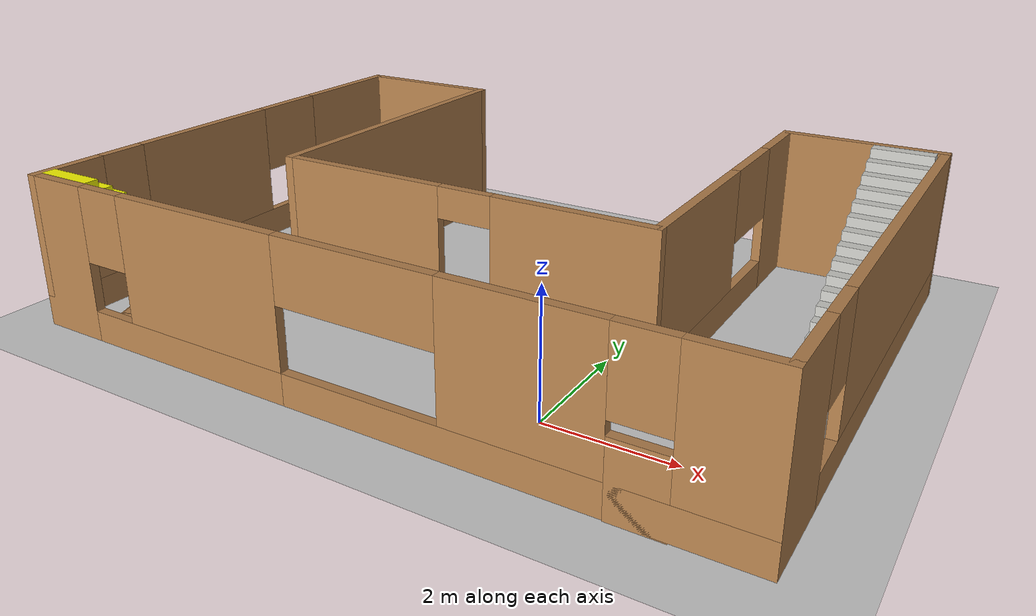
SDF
<sdf version="1.6">
 <world name="default">
  <model name="ground_plane">
   <static>1</static>
   <link name="link">
    <collision name="collision">
     <geometry><plane><normal>0 0 1</normal><size>100 100</size></plane></geometry>
     <surface><friction><ode><mu>100</mu><mu2>50</mu2></ode></friction></surface>
    </collision>
    <visual name="visual">
     <cast_shadows>0</cast_shadows>
     <geometry><plane><normal>0 0 1</normal><size>100 100</size></plane></geometry>
     <material>
      <script><uri>file://media/materials/scripts/gazebo.material</uri><name>Gazebo/Grey</name></script>
     </material>
    </visual>
   </link>
  </model>
  <model name="building0">
   <pose>-2.23967 2.7953 0 0 -0 0</pose>
   <link name="Stairs_0">
    <visual name="Stairs_0_Visual_0">
     <pose>5.18201 0.711332 0.083333 0 -0 -3.14159</pose>
     <geometry><box><size>1 0.233333 0.166667</size></box></geometry>
     <material>
      <script><uri>file://media/materials/scripts/gazebo.material</uri><name>Gazebo/CeilingTiled</name></script>
      <ambient>1 0 1 1</ambient>
     </material>
     <meta><layer>0</layer></meta>
    </visual>
    <collision name="Stairs_0_Collision_0">
     <geometry><box><size>1 0.233333 0.166667</size></box></geometry>
     <pose>5.18201 0.711332 0.083333 0 -0 -3.14159</pose>
    </collision>
    <visual name="Stairs_0_Visual_1">
     <pose>5.18201 0.944665 0.25 0 -0 -3.14159</pose>
     <geometry><box><size>1 0.233333 0.166667</size></box></geometry>
     <material>
      <script><uri>file://media/materials/scripts/gazebo.material</uri><name>Gazebo/CeilingTiled</name></script>
      <ambient>1 0 1 1</ambient>
     </material>
     <meta><layer>0</layer></meta>
    </visual>
    <collision name="Stairs_0_Collision_1">
     <geometry><box><size>1 0.233333 0.166667</size></box></geometry>
     <pose>5.18201 0.944665 0.25 0 -0 -3.14159</pose>
    </collision>
    <visual name="Stairs_0_Visual_2">
     <pose>5.18201 1.178 0.416667 0 -0 -3.14159</pose>
     <geometry><box><size>1 0.233333 0.166667</size></box></geometry>
     <material>
      <script><uri>file://media/materials/scripts/gazebo.material</uri><name>Gazebo/CeilingTiled</name></script>
      <ambient>1 0 1 1</ambient>
     </material>
     <meta><layer>0</layer></meta>
    </visual>
    <collision name="Stairs_0_Collision_2">
     <geometry><box><size>1 0.233333 0.166667</size></box></geometry>
     <pose>5.18201 1.178 0.416667 0 -0 -3.14159</pose>
    </collision>
    <visual name="Stairs_0_Visual_3">
     <pose>5.18201 1.41133 0.583333 0 -0 -3.14159</pose>
     <geometry><box><size>1 0.233333 0.166667</size></box></geometry>
     <material>
      <script><uri>file://media/materials/scripts/gazebo.material</uri><name>Gazebo/CeilingTiled</name></script>
      <ambient>1 0 1 1</ambient>
     </material>
     <meta><layer>0</layer></meta>
    </visual>
    <collision name="Stairs_0_Collision_3">
     <geometry><box><size>1 0.233333 0.166667</size></box></geometry>
     <pose>5.18201 1.41133 0.583333 0 -0 -3.14159</pose>
    </collision>
    <visual name="Stairs_0_Visual_4">
     <pose>5.18201 1.64467 0.75 0 -0 -3.14159</pose>
     <geometry><box><size>1 0.233333 0.166667</size></box></geometry>
     <material>
      <script><uri>file://media/materials/scripts/gazebo.material</uri><name>Gazebo/CeilingTiled</name></script>
      <ambient>1 0 1 1</ambient>
     </material>
     <meta><layer>0</layer></meta>
    </visual>
    <collision name="Stairs_0_Collision_4">
     <geometry><box><size>1 0.233333 0.166667</size></box></geometry>
     <pose>5.18201 1.64467 0.75 0 -0 -3.14159</pose>
    </collision>
    <visual name="Stairs_0_Visual_5">
     <pose>5.18201 1.878 0.916667 0 -0 -3.14159</pose>
     <geometry><box><size>1 0.233333 0.166667</size></box></geometry>
     <material>
      <script><uri>file://media/materials/scripts/gazebo.material</uri><name>Gazebo/CeilingTiled</name></script>
      <ambient>1 0 1 1</ambient>
     </material>
     <meta><layer>0</layer></meta>
    </visual>
    <collision name="Stairs_0_Collision_5">
     <geometry><box><size>1 0.233333 0.166667</size></box></geometry>
     <pose>5.18201 1.878 0.916667 0 -0 -3.14159</pose>
    </collision>
    <visual name="Stairs_0_Visual_6">
     <pose>5.18201 2.11133 1.08333 0 -0 -3.14159</pose>
     <geometry><box><size>1 0.233333 0.166667</size></box></geometry>
     <material>
      <script><uri>file://media/materials/scripts/gazebo.material</uri><name>Gazebo/CeilingTiled</name></script>
      <ambient>1 0 1 1</ambient>
     </material>
     <meta><layer>0</layer></meta>
    </visual>
    <collision name="Stairs_0_Collision_6">
     <geometry><box><size>1 0.233333 0.166667</size></box></geometry>
     <pose>5.18201 2.11133 1.08333 0 -0 -3.14159</pose>
    </collision>
    <visual name="Stairs_0_Visual_7">
     <pose>5.18201 2.34466 1.25 0 -0 -3.14159</pose>
     <geometry><box><size>1 0.233333 0.166667</size></box></geometry>
     <material>
      <script><uri>file://media/materials/scripts/gazebo.material</uri><name>Gazebo/CeilingTiled</name></script>
      <ambient>1 0 1 1</ambient>
     </material>
     <meta><layer>0</layer></meta>
    </visual>
    <collision name="Stairs_0_Collision_7">
     <geometry><box><size>1 0.233333 0.166667</size></box></geometry>
     <pose>5.18201 2.34466 1.25 0 -0 -3.14159</pose>
    </collision>
    <visual name="Stairs_0_Visual_8">
     <pose>5.18201 2.578 1.41667 0 -0 -3.14159</pose>
     <geometry><box><size>1 0.233333 0.166667</size></box></geometry>
     <material>
      <script><uri>file://media/materials/scripts/gazebo.material</uri><name>Gazebo/CeilingTiled</name></script>
      <ambient>1 0 1 1</ambient>
     </material>
     <meta><layer>0</layer></meta>
    </visual>
    <collision name="Stairs_0_Collision_8">
     <geometry><box><size>1 0.233333 0.166667</size></box></geometry>
     <pose>5.18201 2.578 1.41667 0 -0 -3.14159</pose>
    </collision>
    <visual name="Stairs_0_Visual_9">
     <pose>5.18201 2.81133 1.58333 0 -0 -3.14159</pose>
     <geometry><box><size>1 0.233333 0.166667</size></box></geometry>
     <material>
      <script><uri>file://media/materials/scripts/gazebo.material</uri><name>Gazebo/CeilingTiled</name></script>
      <ambient>1 0 1 1</ambient>
     </material>
     <meta><layer>0</layer></meta>
    </visual>
    <collision name="Stairs_0_Collision_9">
     <geometry><box><size>1 0.233333 0.166667</size></box></geometry>
     <pose>5.18201 2.81133 1.58333 0 -0 -3.14159</pose>
    </collision>
    <visual name="Stairs_0_Visual_10">
     <pose>5.18201 3.04467 1.75 0 -0 -3.14159</pose>
     <geometry><box><size>1 0.233333 0.166667</size></box></geometry>
     <material>
      <script><uri>file://media/materials/scripts/gazebo.material</uri><name>Gazebo/CeilingTiled</name></script>
      <ambient>1 0 1 1</ambient>
     </material>
     <meta><layer>0</layer></meta>
    </visual>
    <collision name="Stairs_0_Collision_10">
     <geometry><box><size>1 0.233333 0.166667</size></box></geometry>
     <pose>5.18201 3.04467 1.75 0 -0 -3.14159</pose>
    </collision>
    <visual name="Stairs_0_Visual_11">
     <pose>5.18201 3.278 1.91667 0 -0 -3.14159</pose>
     <geometry><box><size>1 0.233333 0.166667</size></box></geometry>
     <material>
      <script><uri>file://media/materials/scripts/gazebo.material</uri><name>Gazebo/CeilingTiled</name></script>
      <ambient>1 0 1 1</ambient>
     </material>
     <meta><layer>0</layer></meta>
    </visual>
    <collision name="Stairs_0_Collision_11">
     <geometry><box><size>1 0.233333 0.166667</size></box></geometry>
     <pose>5.18201 3.278 1.91667 0 -0 -3.14159</pose>
    </collision>
    <visual name="Stairs_0_Visual_12">
     <pose>5.18201 3.51133 2.08333 0 -0 -3.14159</pose>
     <geometry><box><size>1 0.233333 0.166667</size></box></geometry>
     <material>
      <script><uri>file://media/materials/scripts/gazebo.material</uri><name>Gazebo/CeilingTiled</name></script>
      <ambient>1 0 1 1</ambient>
     </material>
     <meta><layer>0</layer></meta>
    </visual>
    <collision name="Stairs_0_Collision_12">
     <geometry><box><size>1 0.233333 0.166667</size></box></geometry>
     <pose>5.18201 3.51133 2.08333 0 -0 -3.14159</pose>
    </collision>
    <visual name="Stairs_0_Visual_13">
     <pose>5.18201 3.74466 2.25 0 -0 -3.14159</pose>
     <geometry><box><size>1 0.233333 0.166667</size></box></geometry>
     <material>
      <script><uri>file://media/materials/scripts/gazebo.material</uri><name>Gazebo/CeilingTiled</name></script>
      <ambient>1 0 1 1</ambient>
     </material>
     <meta><layer>0</layer></meta>
    </visual>
    <collision name="Stairs_0_Collision_13">
     <geometry><box><size>1 0.233333 0.166667</size></box></geometry>
     <pose>5.18201 3.74466 2.25 0 -0 -3.14159</pose>
    </collision>
    <visual name="Stairs_0_Visual_14">
     <pose>5.18201 3.978 2.41667 0 -0 -3.14159</pose>
     <geometry><box><size>1 0.233333 0.166667</size></box></geometry>
     <material>
      <script><uri>file://media/materials/scripts/gazebo.material</uri><name>Gazebo/CeilingTiled</name></script>
      <ambient>1 0 1 1</ambient>
     </material>
     <meta><layer>0</layer></meta>
    </visual>
    <collision name="Stairs_0_Collision_14">
     <geometry><box><size>1 0.233333 0.166667</size></box></geometry>
     <pose>5.18201 3.978 2.41667 0 -0 -3.14159</pose>
    </collision>
   </link>
   <link name="Stairs_1">
    <visual name="Stairs_1_Visual_0">
     <pose>-5.25693 -0.708464 0.083333 0 -0 0</pose>
     <geometry><box><size>1 0.233333 0.166667</size></box></geometry>
     <material>
      <script><uri>file://media/materials/scripts/gazebo.material</uri><name>Gazebo/Grey</name></script>
      <ambient>1 1 0 1</ambient>
     </material>
     <meta><layer>0</layer></meta>
    </visual>
    <collision name="Stairs_1_Collision_0">
     <geometry><box><size>1 0.233333 0.166667</size></box></geometry>
     <pose>-5.25693 -0.708464 0.083333 0 -0 0</pose>
    </collision>
    <visual name="Stairs_1_Visual_1">
     <pose>-5.25693 -0.941797 0.25 0 -0 0</pose>
     <geometry><box><size>1 0.233333 0.166667</size></box></geometry>
     <material>
      <script><uri>file://media/materials/scripts/gazebo.material</uri><name>Gazebo/Grey</name></script>
      <ambient>1 1 0 1</ambient>
     </material>
     <meta><layer>0</layer></meta>
    </visual>
    <collision name="Stairs_1_Collision_1">
     <geometry><box><size>1 0.233333 0.166667</size></box></geometry>
     <pose>-5.25693 -0.941797 0.25 0 -0 0</pose>
    </collision>
    <visual name="Stairs_1_Visual_2">
     <pose>-5.25693 -1.17513 0.416667 0 -0 0</pose>
     <geometry><box><size>1 0.233333 0.166667</size></box></geometry>
     <material>
      <script><uri>file://media/materials/scripts/gazebo.material</uri><name>Gazebo/Grey</name></script>
      <ambient>1 1 0 1</ambient>
     </material>
     <meta><layer>0</layer></meta>
    </visual>
    <collision name="Stairs_1_Collision_2">
     <geometry><box><size>1 0.233333 0.166667</size></box></geometry>
     <pose>-5.25693 -1.17513 0.416667 0 -0 0</pose>
    </collision>
    <visual name="Stairs_1_Visual_3">
     <pose>-5.25693 -1.40846 0.583333 0 -0 0</pose>
     <geometry><box><size>1 0.233333 0.166667</size></box></geometry>
     <material>
      <script><uri>file://media/materials/scripts/gazebo.material</uri><name>Gazebo/Grey</name></script>
      <ambient>1 1 0 1</ambient>
     </material>
     <meta><layer>0</layer></meta>
    </visual>
    <collision name="Stairs_1_Collision_3">
     <geometry><box><size>1 0.233333 0.166667</size></box></geometry>
     <pose>-5.25693 -1.40846 0.583333 0 -0 0</pose>
    </collision>
    <visual name="Stairs_1_Visual_4">
     <pose>-5.25693 -1.6418 0.75 0 -0 0</pose>
     <geometry><box><size>1 0.233333 0.166667</size></box></geometry>
     <material>
      <script><uri>file://media/materials/scripts/gazebo.material</uri><name>Gazebo/Grey</name></script>
      <ambient>1 1 0 1</ambient>
     </material>
     <meta><layer>0</layer></meta>
    </visual>
    <collision name="Stairs_1_Collision_4">
     <geometry><box><size>1 0.233333 0.166667</size></box></geometry>
     <pose>-5.25693 -1.6418 0.75 0 -0 0</pose>
    </collision>
    <visual name="Stairs_1_Visual_5">
     <pose>-5.25693 -1.87513 0.916667 0 -0 0</pose>
     <geometry><box><size>1 0.233333 0.166667</size></box></geometry>
     <material>
      <script><uri>file://media/materials/scripts/gazebo.material</uri><name>Gazebo/Grey</name></script>
      <ambient>1 1 0 1</ambient>
     </material>
     <meta><layer>0</layer></meta>
    </visual>
    <collision name="Stairs_1_Collision_5">
     <geometry><box><size>1 0.233333 0.166667</size></box></geometry>
     <pose>-5.25693 -1.87513 0.916667 0 -0 0</pose>
    </collision>
    <visual name="Stairs_1_Visual_6">
     <pose>-5.25693 -2.10846 1.08333 0 -0 0</pose>
     <geometry><box><size>1 0.233333 0.166667</size></box></geometry>
     <material>
      <script><uri>file://media/materials/scripts/gazebo.material</uri><name>Gazebo/Grey</name></script>
      <ambient>1 1 0 1</ambient>
     </material>
     <meta><layer>0</layer></meta>
    </visual>
    <collision name="Stairs_1_Collision_6">
     <geometry><box><size>1 0.233333 0.166667</size></box></geometry>
     <pose>-5.25693 -2.10846 1.08333 0 -0 0</pose>
    </collision>
    <visual name="Stairs_1_Visual_7">
     <pose>-5.25693 -2.3418 1.25 0 -0 0</pose>
     <geometry><box><size>1 0.233333 0.166667</size></box></geometry>
     <material>
      <script><uri>file://media/materials/scripts/gazebo.material</uri><name>Gazebo/Grey</name></script>
      <ambient>1 1 0 1</ambient>
     </material>
     <meta><layer>0</layer></meta>
    </visual>
    <collision name="Stairs_1_Collision_7">
     <geometry><box><size>1 0.233333 0.166667</size></box></geometry>
     <pose>-5.25693 -2.3418 1.25 0 -0 0</pose>
    </collision>
    <visual name="Stairs_1_Visual_8">
     <pose>-5.25693 -2.57513 1.41667 0 -0 0</pose>
     <geometry><box><size>1 0.233333 0.166667</size></box></geometry>
     <material>
      <script><uri>file://media/materials/scripts/gazebo.material</uri><name>Gazebo/Grey</name></script>
      <ambient>1 1 0 1</ambient>
     </material>
     <meta><layer>0</layer></meta>
    </visual>
    <collision name="Stairs_1_Collision_8">
     <geometry><box><size>1 0.233333 0.166667</size></box></geometry>
     <pose>-5.25693 -2.57513 1.41667 0 -0 0</pose>
    </collision>
    <visual name="Stairs_1_Visual_9">
     <pose>-5.25693 -2.80846 1.58333 0 -0 0</pose>
     <geometry><box><size>1 0.233333 0.166667</size></box></geometry>
     <material>
      <script><uri>file://media/materials/scripts/gazebo.material</uri><name>Gazebo/Grey</name></script>
      <ambient>1 1 0 1</ambient>
     </material>
     <meta><layer>0</layer></meta>
    </visual>
    <collision name="Stairs_1_Collision_9">
     <geometry><box><size>1 0.233333 0.166667</size></box></geometry>
     <pose>-5.25693 -2.80846 1.58333 0 -0 0</pose>
    </collision>
    <visual name="Stairs_1_Visual_10">
     <pose>-5.25693 -3.0418 1.75 0 -0 0</pose>
     <geometry><box><size>1 0.233333 0.166667</size></box></geometry>
     <material>
      <script><uri>file://media/materials/scripts/gazebo.material</uri><name>Gazebo/Grey</name></script>
      <ambient>1 1 0 1</ambient>
     </material>
     <meta><layer>0</layer></meta>
    </visual>
    <collision name="Stairs_1_Collision_10">
     <geometry><box><size>1 0.233333 0.166667</size></box></geometry>
     <pose>-5.25693 -3.0418 1.75 0 -0 0</pose>
    </collision>
    <visual name="Stairs_1_Visual_11">
     <pose>-5.25693 -3.27513 1.91667 0 -0 0</pose>
     <geometry><box><size>1 0.233333 0.166667</size></box></geometry>
     <material>
      <script><uri>file://media/materials/scripts/gazebo.material</uri><name>Gazebo/Grey</name></script>
      <ambient>1 1 0 1</ambient>
     </material>
     <meta><layer>0</layer></meta>
    </visual>
    <collision name="Stairs_1_Collision_11">
     <geometry><box><size>1 0.233333 0.166667</size></box></geometry>
     <pose>-5.25693 -3.27513 1.91667 0 -0 0</pose>
    </collision>
    <visual name="Stairs_1_Visual_12">
     <pose>-5.25693 -3.50846 2.08333 0 -0 0</pose>
     <geometry><box><size>1 0.233333 0.166667</size></box></geometry>
     <material>
      <script><uri>file://media/materials/scripts/gazebo.material</uri><name>Gazebo/Grey</name></script>
      <ambient>1 1 0 1</ambient>
     </material>
     <meta><layer>0</layer></meta>
    </visual>
    <collision name="Stairs_1_Collision_12">
     <geometry><box><size>1 0.233333 0.166667</size></box></geometry>
     <pose>-5.25693 -3.50846 2.08333 0 -0 0</pose>
    </collision>
    <visual name="Stairs_1_Visual_13">
     <pose>-5.25693 -3.7418 2.25 0 -0 0</pose>
     <geometry><box><size>1 0.233333 0.166667</size></box></geometry>
     <material>
      <script><uri>file://media/materials/scripts/gazebo.material</uri><name>Gazebo/Grey</name></script>
      <ambient>1 1 0 1</ambient>
     </material>
     <meta><layer>0</layer></meta>
    </visual>
    <collision name="Stairs_1_Collision_13">
     <geometry><box><size>1 0.233333 0.166667</size></box></geometry>
     <pose>-5.25693 -3.7418 2.25 0 -0 0</pose>
    </collision>
    <visual name="Stairs_1_Visual_14">
     <pose>-5.25693 -3.97513 2.41667 0 -0 0</pose>
     <geometry><box><size>1 0.233333 0.166667</size></box></geometry>
     <material>
      <script><uri>file://media/materials/scripts/gazebo.material</uri><name>Gazebo/Grey</name></script>
      <ambient>1 1 0 1</ambient>
     </material>
     <meta><layer>0</layer></meta>
    </visual>
    <collision name="Stairs_1_Collision_14">
     <geometry><box><size>1 0.233333 0.166667</size></box></geometry>
     <pose>-5.25693 -3.97513 2.41667 0 -0 0</pose>
    </collision>
   </link>
   <link name="Wall_29">
    <pose>-5.8 0 0 0 0 -1.5708</pose>
    <visual name="Wall_29_Visual_0">
     <pose>-3.11517 0 1.25 0 -0 0</pose>
     <geometry><box><size>2.26965 0.15 2.5</size></box></geometry>
     <material>
      <script><uri>file://media/materials/scripts/gazebo.material</uri><name>Gazebo/Wood</name></script>
      <ambient>1 0.764706 0.305882 1</ambient>
     </material>
     <meta><layer>0</layer></meta>
    </visual>
    <collision name="Wall_29_Collision_0">
     <geometry><box><size>2.26965 0.15 2.5</size></box></geometry>
     <pose>-3.11517 0 1.25 0 -0 0</pose>
    </collision>
    <visual name="Wall_29_Visual_1">
     <pose>1.13482 0 0.25 0 -0 0</pose>
     <geometry><box><size>6.23035 0.15 0.5</size></box></geometry>
     <material>
      <script><uri>file://media/materials/scripts/gazebo.material</uri><name>Gazebo/Wood</name></script>
      <ambient>1 0.764706 0.305882 1</ambient>
     </material>
     <meta><layer>0</layer></meta>
    </visual>
    <collision name="Wall_29_Collision_1">
     <geometry><box><size>6.23035 0.15 0.5</size></box></geometry>
     <pose>1.13482 0 0.25 0 -0 0</pose>
    </collision>
    <visual name="Wall_29_Visual_2">
     <pose>0.782995 0 1.5 0 -0 0</pose>
     <geometry><box><size>2.84056 0.15 2</size></box></geometry>
     <material>
      <script><uri>file://media/materials/scripts/gazebo.material</uri><name>Gazebo/Wood</name></script>
      <ambient>1 0.764706 0.305882 1</ambient>
     </material>
     <meta><layer>0</layer></meta>
    </visual>
    <collision name="Wall_29_Collision_2">
     <geometry><box><size>2.84056 0.15 2</size></box></geometry>
     <pose>0.782995 0 1.5 0 -0 0</pose>
    </collision>
    <visual name="Wall_29_Visual_3">
     <pose>3.62664 0 1.5 0 -0 0</pose>
     <geometry><box><size>1.24673 0.15 2</size></box></geometry>
     <material>
      <script><uri>file://media/materials/scripts/gazebo.material</uri><name>Gazebo/Wood</name></script>
      <ambient>1 0.764706 0.305882 1</ambient>
     </material>
     <meta><layer>0</layer></meta>
    </visual>
    <collision name="Wall_29_Collision_3">
     <geometry><box><size>1.24673 0.15 2</size></box></geometry>
     <pose>3.62664 0 1.5 0 -0 0</pose>
    </collision>
    <visual name="Wall_29_Visual_4">
     <pose>-1.30882 0 1.9 0 -0 0</pose>
     <geometry><box><size>1.34307 0.15 1.2</size></box></geometry>
     <material>
      <script><uri>file://media/materials/scripts/gazebo.material</uri><name>Gazebo/Wood</name></script>
      <ambient>1 0.764706 0.305882 1</ambient>
     </material>
     <meta><layer>0</layer></meta>
    </visual>
    <collision name="Wall_29_Collision_4">
     <geometry><box><size>1.34307 0.15 1.2</size></box></geometry>
     <pose>-1.30882 0 1.9 0 -0 0</pose>
    </collision>
    <visual name="Wall_29_Visual_5">
     <pose>2.60327 0 1.9 0 -0 0</pose>
     <geometry><box><size>0.8 0.15 1.2</size></box></geometry>
     <material>
      <script><uri>file://media/materials/scripts/gazebo.material</uri><name>Gazebo/Wood</name></script>
      <ambient>1 0.764706 0.305882 1</ambient>
     </material>
     <meta><layer>0</layer></meta>
    </visual>
    <collision name="Wall_29_Collision_5">
     <geometry><box><size>0.8 0.15 1.2</size></box></geometry>
     <pose>2.60327 0 1.9 0 -0 0</pose>
    </collision>
   </link>
   <link name="Wall_30">
    <pose>0 -4.175 0 0 -0 0</pose>
    <visual name="Wall_30_Visual_0">
     <pose>-5.2933 0 1.25 0 -0 0</pose>
     <geometry><box><size>1.1634 0.15 2.5</size></box></geometry>
     <material>
      <script><uri>file://media/materials/scripts/gazebo.material</uri><name>Gazebo/Wood</name></script>
      <ambient>1 0.764706 0.305882 1</ambient>
     </material>
     <meta><layer>0</layer></meta>
    </visual>
    <collision name="Wall_30_Collision_0">
     <geometry><box><size>1.1634 0.15 2.5</size></box></geometry>
     <pose>-5.2933 0 1.25 0 -0 0</pose>
    </collision>
    <visual name="Wall_30_Visual_1">
     <pose>-2.83101 0 0.25 0 -0 0</pose>
     <geometry><box><size>3.76118 0.15 0.5</size></box></geometry>
     <material>
      <script><uri>file://media/materials/scripts/gazebo.material</uri><name>Gazebo/Wood</name></script>
      <ambient>1 0.764706 0.305882 1</ambient>
     </material>
     <meta><layer>0</layer></meta>
    </visual>
    <collision name="Wall_30_Collision_1">
     <geometry><box><size>3.76118 0.15 0.5</size></box></geometry>
     <pose>-2.83101 0 0.25 0 -0 0</pose>
    </collision>
    <visual name="Wall_30_Visual_2">
     <pose>2.46229 0 0.25 0 -0 0</pose>
     <geometry><box><size>6.82542 0.15 0.5</size></box></geometry>
     <material>
      <script><uri>file://media/materials/scripts/gazebo.material</uri><name>Gazebo/Wood</name></script>
      <ambient>1 0.764706 0.305882 1</ambient>
     </material>
     <meta><layer>0</layer></meta>
    </visual>
    <collision name="Wall_30_Collision_2">
     <geometry><box><size>6.82542 0.15 0.5</size></box></geometry>
     <pose>2.46229 0 0.25 0 -0 0</pose>
    </collision>
    <visual name="Wall_30_Visual_3">
     <pose>2.72818 0 1.5 0 -0 0</pose>
     <geometry><box><size>2.2572 0.15 2</size></box></geometry>
     <material>
      <script><uri>file://media/materials/scripts/gazebo.material</uri><name>Gazebo/Wood</name></script>
      <ambient>1 0.764706 0.305882 1</ambient>
     </material>
     <meta><layer>0</layer></meta>
    </visual>
    <collision name="Wall_30_Collision_3">
     <geometry><box><size>2.2572 0.15 2</size></box></geometry>
     <pose>2.72818 0 1.5 0 -0 0</pose>
    </collision>
    <visual name="Wall_30_Visual_4">
     <pose>5.26589 0 1.5 0 -0 0</pose>
     <geometry><box><size>1.21821 0.15 2</size></box></geometry>
     <material>
      <script><uri>file://media/materials/scripts/gazebo.material</uri><name>Gazebo/Wood</name></script>
      <ambient>1 0.764706 0.305882 1</ambient>
     </material>
     <meta><layer>0</layer></meta>
    </visual>
    <collision name="Wall_30_Collision_4">
     <geometry><box><size>1.21821 0.15 2</size></box></geometry>
     <pose>5.26589 0 1.5 0 -0 0</pose>
    </collision>
    <visual name="Wall_30_Visual_5">
     <pose>4.25679 0 0.5 0 -0 0</pose>
     <geometry><box><size>0.8 0.15 1.2</size></box></geometry>
     <material>
      <script><uri>file://media/materials/scripts/gazebo.material</uri><name>Gazebo/Wood</name></script>
      <ambient>1 0.764706 0.305882 1</ambient>
     </material>
     <meta><layer>0</layer></meta>
    </visual>
    <collision name="Wall_30_Collision_5">
     <geometry><box><size>0.8 0.15 1.2</size></box></geometry>
     <pose>4.25679 0 0.5 0 -0 0</pose>
    </collision>
    <visual name="Wall_30_Visual_6">
     <pose>-2.43101 0 1.5 0 -0 0</pose>
     <geometry><box><size>2.96118 0.15 2</size></box></geometry>
     <material>
      <script><uri>file://media/materials/scripts/gazebo.material</uri><name>Gazebo/Wood</name></script>
      <ambient>1 0.764706 0.305882 1</ambient>
     </material>
     <meta><layer>0</layer></meta>
    </visual>
    <collision name="Wall_30_Collision_6">
     <geometry><box><size>2.96118 0.15 2</size></box></geometry>
     <pose>-2.43101 0 1.5 0 -0 0</pose>
    </collision>
    <visual name="Wall_30_Visual_7">
     <pose>-2.43101 0 1.5 0 -0 0</pose>
     <geometry><box><size>2.96118 0.15 2</size></box></geometry>
     <material>
      <script><uri>file://media/materials/scripts/gazebo.material</uri><name>Gazebo/Wood</name></script>
      <ambient>1 0.764706 0.305882 1</ambient>
     </material>
     <meta><layer>0</layer></meta>
    </visual>
    <collision name="Wall_30_Collision_7">
     <geometry><box><size>2.96118 0.15 2</size></box></geometry>
     <pose>-2.43101 0 1.5 0 -0 0</pose>
    </collision>
    <visual name="Wall_30_Visual_8">
     <pose>-4.3116 0 1.9 0 -0 0</pose>
     <geometry><box><size>0.8 0.15 1.2</size></box></geometry>
     <material>
      <script><uri>file://media/materials/scripts/gazebo.material</uri><name>Gazebo/Wood</name></script>
      <ambient>1 0.764706 0.305882 1</ambient>
     </material>
     <meta><layer>0</layer></meta>
    </visual>
    <collision name="Wall_30_Collision_8">
     <geometry><box><size>0.8 0.15 1.2</size></box></geometry>
     <pose>-4.3116 0 1.9 0 -0 0</pose>
    </collision>
    <visual name="Wall_30_Visual_9">
     <pose>4.25679 0 1.9 0 -0 0</pose>
     <geometry><box><size>0.8 0.15 1.2</size></box></geometry>
     <material>
      <script><uri>file://media/materials/scripts/gazebo.material</uri><name>Gazebo/Wood</name></script>
      <ambient>1 0.764706 0.305882 1</ambient>
     </material>
     <meta><layer>0</layer></meta>
    </visual>
    <collision name="Wall_30_Collision_9">
     <geometry><box><size>0.8 0.15 1.2</size></box></geometry>
     <pose>4.25679 0 1.9 0 -0 0</pose>
    </collision>
    <visual name="Wall_30_Visual_10">
     <pose>0.324583 0 2 0 -0 0</pose>
     <geometry><box><size>2.55 0.15 1</size></box></geometry>
     <material>
      <script><uri>file://media/materials/scripts/gazebo.material</uri><name>Gazebo/Wood</name></script>
      <ambient>1 0.764706 0.305882 1</ambient>
     </material>
     <meta><layer>0</layer></meta>
    </visual>
    <collision name="Wall_30_Collision_10">
     <geometry><box><size>2.55 0.15 1</size></box></geometry>
     <pose>0.324583 0 2 0 -0 0</pose>
    </collision>
    <visual name="Wall_30_Visual_11">
     <pose>0.324583 0 2 0 -0 0</pose>
     <geometry><box><size>2.55 0.15 1</size></box></geometry>
     <material>
      <script><uri>file://media/materials/scripts/gazebo.material</uri><name>Gazebo/Wood</name></script>
      <ambient>1 0.764706 0.305882 1</ambient>
     </material>
     <meta><layer>0</layer></meta>
    </visual>
    <collision name="Wall_30_Collision_11">
     <geometry><box><size>2.55 0.15 1</size></box></geometry>
     <pose>0.324583 0 2 0 -0 0</pose>
    </collision>
   </link>
   <link name="Wall_31">
    <pose>5.8 0 0 0 -0 1.5708</pose>
    <visual name="Wall_31_Visual_0">
     <pose>-3.54618 0 1.25 0 -0 0</pose>
     <geometry><box><size>1.40763 0.15 2.5</size></box></geometry>
     <material>
      <script><uri>file://media/materials/scripts/gazebo.material</uri><name>Gazebo/Wood</name></script>
      <ambient>1 0.764706 0.305882 1</ambient>
     </material>
     <meta><layer>0</layer></meta>
    </visual>
    <collision name="Wall_31_Collision_0">
     <geometry><box><size>1.40763 0.15 2.5</size></box></geometry>
     <pose>-3.54618 0 1.25 0 -0 0</pose>
    </collision>
    <visual name="Wall_31_Visual_1">
     <pose>0.703818 0 0.25 0 -0 0</pose>
     <geometry><box><size>7.09237 0.15 0.5</size></box></geometry>
     <material>
      <script><uri>file://media/materials/scripts/gazebo.material</uri><name>Gazebo/Wood</name></script>
      <ambient>1 0.764706 0.305882 1</ambient>
     </material>
     <meta><layer>0</layer></meta>
    </visual>
    <collision name="Wall_31_Collision_1">
     <geometry><box><size>7.09237 0.15 0.5</size></box></geometry>
     <pose>0.703818 0 0.25 0 -0 0</pose>
    </collision>
    <visual name="Wall_31_Visual_2">
     <pose>1.10382 0 1.5 0 -0 0</pose>
     <geometry><box><size>6.29237 0.15 2</size></box></geometry>
     <material>
      <script><uri>file://media/materials/scripts/gazebo.material</uri><name>Gazebo/Wood</name></script>
      <ambient>1 0.764706 0.305882 1</ambient>
     </material>
     <meta><layer>0</layer></meta>
    </visual>
    <collision name="Wall_31_Collision_2">
     <geometry><box><size>6.29237 0.15 2</size></box></geometry>
     <pose>1.10382 0 1.5 0 -0 0</pose>
    </collision>
    <visual name="Wall_31_Visual_3">
     <pose>-2.44237 0 1.9 0 -0 0</pose>
     <geometry><box><size>0.8 0.15 1.2</size></box></geometry>
     <material>
      <script><uri>file://media/materials/scripts/gazebo.material</uri><name>Gazebo/Wood</name></script>
      <ambient>1 0.764706 0.305882 1</ambient>
     </material>
     <meta><layer>0</layer></meta>
    </visual>
    <collision name="Wall_31_Collision_3">
     <geometry><box><size>0.8 0.15 1.2</size></box></geometry>
     <pose>-2.44237 0 1.9 0 -0 0</pose>
    </collision>
   </link>
   <link name="Wall_32">
    <collision name="Wall_32_Collision">
     <geometry><box><size>2.75 0.15 2.5</size></box></geometry>
     <pose>0 0 1.25 0 -0 0</pose>
    </collision>
    <visual name="Wall_32_Visual">
     <pose>0 0 1.25 0 -0 0</pose>
     <geometry><box><size>2.75 0.15 2.5</size></box></geometry>
     <material>
      <script><uri>file://media/materials/scripts/gazebo.material</uri><name>Gazebo/Wood</name></script>
      <ambient>1 0.764706 0.305882 1</ambient>
     </material>
     <meta><layer>0</layer></meta>
    </visual>
    <pose>4.5 4.175 0 0 -0 3.14159</pose>
   </link>
   <link name="Wall_33">
    <pose>3.2 1.375 0 0 0 -1.5708</pose>
    <visual name="Wall_33_Visual_0">
     <pose>-2.23296 0 1.25 0 -0 0</pose>
     <geometry><box><size>1.28409 0.15 2.5</size></box></geometry>
     <material>
      <script><uri>file://media/materials/scripts/gazebo.material</uri><name>Gazebo/Wood</name></script>
      <ambient>1 0.764706 0.305882 1</ambient>
     </material>
     <meta><layer>0</layer></meta>
    </visual>
    <collision name="Wall_33_Collision_0">
     <geometry><box><size>1.28409 0.15 2.5</size></box></geometry>
     <pose>-2.23296 0 1.25 0 -0 0</pose>
    </collision>
    <visual name="Wall_33_Visual_1">
     <pose>0.642043 0 0.25 0 -0 0</pose>
     <geometry><box><size>4.46591 0.15 0.5</size></box></geometry>
     <material>
      <script><uri>file://media/materials/scripts/gazebo.material</uri><name>Gazebo/Wood</name></script>
      <ambient>1 0.764706 0.305882 1</ambient>
     </material>
     <meta><layer>0</layer></meta>
    </visual>
    <collision name="Wall_33_Collision_1">
     <geometry><box><size>4.46591 0.15 0.5</size></box></geometry>
     <pose>0.642043 0 0.25 0 -0 0</pose>
    </collision>
    <visual name="Wall_33_Visual_2">
     <pose>1.36386 0 1.5 0 -0 0</pose>
     <geometry><box><size>3.02228 0.15 2</size></box></geometry>
     <material>
      <script><uri>file://media/materials/scripts/gazebo.material</uri><name>Gazebo/Wood</name></script>
      <ambient>1 0.764706 0.305882 1</ambient>
     </material>
     <meta><layer>0</layer></meta>
    </visual>
    <collision name="Wall_33_Collision_2">
     <geometry><box><size>3.02228 0.15 2</size></box></geometry>
     <pose>1.36386 0 1.5 0 -0 0</pose>
    </collision>
    <visual name="Wall_33_Visual_3">
     <pose>-0.869097 0 1.9 0 -0 0</pose>
     <geometry><box><size>1.44363 0.15 1.2</size></box></geometry>
     <material>
      <script><uri>file://media/materials/scripts/gazebo.material</uri><name>Gazebo/Wood</name></script>
      <ambient>1 0.764706 0.305882 1</ambient>
     </material>
     <meta><layer>0</layer></meta>
    </visual>
    <collision name="Wall_33_Collision_3">
     <geometry><box><size>1.44363 0.15 1.2</size></box></geometry>
     <pose>-0.869097 0 1.9 0 -0 0</pose>
    </collision>
   </link>
   <link name="Wall_34">
    <pose>0.025 -1.425 0 0 -0 3.14159</pose>
    <visual name="Wall_34_Visual_0">
     <pose>-1.93442 0 1.25 0 -0 0</pose>
     <geometry><box><size>2.63116 0.15 2.5</size></box></geometry>
     <material>
      <script><uri>file://media/materials/scripts/gazebo.material</uri><name>Gazebo/Wood</name></script>
      <ambient>1 0.764706 0.305882 1</ambient>
     </material>
     <meta><layer>0</layer></meta>
    </visual>
    <collision name="Wall_34_Collision_0">
     <geometry><box><size>2.63116 0.15 2.5</size></box></geometry>
     <pose>-1.93442 0 1.25 0 -0 0</pose>
    </collision>
    <visual name="Wall_34_Visual_1">
     <pose>1.76558 0 1.25 0 -0 0</pose>
     <geometry><box><size>2.96884 0.15 2.5</size></box></geometry>
     <material>
      <script><uri>file://media/materials/scripts/gazebo.material</uri><name>Gazebo/Wood</name></script>
      <ambient>1 0.764706 0.305882 1</ambient>
     </material>
     <meta><layer>0</layer></meta>
    </visual>
    <collision name="Wall_34_Collision_1">
     <geometry><box><size>2.96884 0.15 2.5</size></box></geometry>
     <pose>1.76558 0 1.25 0 -0 0</pose>
    </collision>
    <visual name="Wall_34_Visual_2">
     <pose>-0.168844 0 2.25 0 -0 0</pose>
     <geometry><box><size>0.9 0.15 0.5</size></box></geometry>
     <material>
      <script><uri>file://media/materials/scripts/gazebo.material</uri><name>Gazebo/Wood</name></script>
      <ambient>1 0.764706 0.305882 1</ambient>
     </material>
     <meta><layer>0</layer></meta>
    </visual>
    <collision name="Wall_34_Collision_2">
     <geometry><box><size>0.9 0.15 0.5</size></box></geometry>
     <pose>-0.168844 0 2.25 0 -0 0</pose>
    </collision>
   </link>
   <link name="Wall_35">
    <collision name="Wall_35_Collision">
     <geometry><box><size>5.75 0.15 2.5</size></box></geometry>
     <pose>0 0 1.25 0 -0 0</pose>
    </collision>
    <visual name="Wall_35_Visual">
     <pose>0 0 1.25 0 -0 0</pose>
     <geometry><box><size>5.75 0.15 2.5</size></box></geometry>
     <material>
      <script><uri>file://media/materials/scripts/gazebo.material</uri><name>Gazebo/Wood</name></script>
      <ambient>1 0.764706 0.305882 1</ambient>
     </material>
     <meta><layer>0</layer></meta>
    </visual>
    <pose>-3.15 1.375 0 0 -0 1.5708</pose>
   </link>
   <link name="Wall_36">
    <collision name="Wall_36_Collision">
     <geometry><box><size>2.8 0.15 2.5</size></box></geometry>
     <pose>0 0 1.25 0 -0 0</pose>
    </collision>
    <visual name="Wall_36_Visual">
     <pose>0 0 1.25 0 -0 0</pose>
     <geometry><box><size>2.8 0.15 2.5</size></box></geometry>
     <material>
      <script><uri>file://media/materials/scripts/gazebo.material</uri><name>Gazebo/Wood</name></script>
      <ambient>1 0.764706 0.305882 1</ambient>
     </material>
     <meta><layer>0</layer></meta>
    </visual>
    <pose>-4.475 4.175 0 0 0 -3.14159</pose>
   </link>
   <static>1</static>
  </model>
  <model name="wooden_case_metal_peg">
   <link name="wooden_case::base">
    <pose>0 0 0.024 0 -0 0</pose>
    <inertial>
     <pose>-0.022184 0 0.171592 0 -0 0</pose>
     <mass>3.96264</mass>
     <inertia>
      <ixx>0.213536</ixx>
      <ixy>0</ixy>
      <ixz>0.000779377</ixz>
      <iyy>0.0708943</iyy>
      <iyz>0</iyz>
      <izz>0.154604</izz>
     </inertia>
    </inertial>
    <collision name="collision_back">
     <pose>-0.053975 0 0.1778 0 -0 0</pose>
     <geometry><box><size>0.01905 0.5461 0.3175</size></box></geometry>
     <surface>
      <contact>
       <poissons_ratio>0.347</poissons_ratio>
       <elastic_modulus>8.8e+09</elastic_modulus>
       <ode><kp>100000</kp><kd>100</kd><max_vel>100</max_vel><min_depth>0.001</min_depth></ode>
      </contact>
      <friction>
       <torsional>
        <coefficient>1</coefficient>
        <use_patch_radius>0</use_patch_radius>
        <surface_radius>0.01</surface_radius>
       </torsional>
      </friction>
     </surface>
    </collision>
    <visual name="visual_back">
     <pose>-0.053975 0 0.1778 0 -0 0</pose>
     <geometry><box><size>0.01905 0.5461 0.3175</size></box></geometry>
     <material>
      <script><uri>file://media/materials/scripts/gazebo.material</uri><name>Gazebo/Wood</name></script>
     </material>
    </visual>
    <collision name="collision_bottom">
     <pose>0 0 0.009525 0 -0 0</pose>
     <geometry><box><size>0.127 0.5842 0.01905</size></box></geometry>
     <surface>
      <contact>
       <poissons_ratio>0.347</poissons_ratio>
       <elastic_modulus>8.8e+09</elastic_modulus>
       <ode><kp>100000</kp><kd>100</kd><max_vel>100</max_vel><min_depth>0.001</min_depth></ode>
      </contact>
      <friction>
       <torsional>
        <coefficient>1</coefficient>
        <use_patch_radius>0</use_patch_radius>
        <surface_radius>0.01</surface_radius>
       </torsional>
      </friction>
     </surface>
    </collision>
    <visual name="visual_bottom">
     <pose>0 0 0.009525 0 -0 0</pose>
     <geometry><box><size>0.127 0.5842 0.01905</size></box></geometry>
     <material>
      <script><uri>file://media/materials/scripts/gazebo.material</uri><name>Gazebo/Wood</name></script>
     </material>
    </visual>
    <collision name="collision_top">
     <pose>0 0 0.346075 0 -0 0</pose>
     <geometry><box><size>0.127 0.5842 0.01905</size></box></geometry>
     <surface>
      <contact>
       <poissons_ratio>0.347</poissons_ratio>
       <elastic_modulus>8.8e+09</elastic_modulus>
       <ode><kp>100000</kp><kd>100</kd><max_vel>100</max_vel><min_depth>0.001</min_depth></ode>
      </contact>
      <friction>
       <torsional>
        <coefficient>1</coefficient>
        <use_patch_radius>0</use_patch_radius>
        <surface_radius>0.01</surface_radius>
       </torsional>
      </friction>
     </surface>
    </collision>
    <visual name="visual_top">
     <pose>0 0 0.346075 0 -0 0</pose>
     <geometry><box><size>0.127 0.5842 0.01905</size></box></geometry>
     <material>
      <script><uri>file://media/materials/scripts/gazebo.material</uri><name>Gazebo/Wood</name></script>
     </material>
    </visual>
    <collision name="collision_left">
     <pose>0 -0.282575 0.1778 0 -0 0</pose>
     <geometry><box><size>0.127 0.01905 0.3175</size></box></geometry>
     <surface>
      <contact>
       <poissons_ratio>0.347</poissons_ratio>
       <elastic_modulus>8.8e+09</elastic_modulus>
       <ode><kp>100000</kp><kd>100</kd><max_vel>100</max_vel><min_depth>0.001</min_depth></ode>
      </contact>
      <friction>
       <torsional>
        <coefficient>1</coefficient>
        <use_patch_radius>0</use_patch_radius>
        <surface_radius>0.01</surface_radius>
       </torsional>
      </friction>
     </surface>
    </collision>
    <visual name="visual_left">
     <pose>0 -0.282575 0.1778 0 -0 0</pose>
     <geometry><box><size>0.127 0.01905 0.3175</size></box></geometry>
     <material>
      <script><uri>file://media/materials/scripts/gazebo.material</uri><name>Gazebo/Wood</name></script>
     </material>
    </visual>
    <collision name="collision_right">
     <pose>0 0.282575 0.1778 0 -0 0</pose>
     <geometry><box><size>0.127 0.01905 0.3175</size></box></geometry>
     <surface>
      <contact>
       <poissons_ratio>0.347</poissons_ratio>
       <elastic_modulus>8.8e+09</elastic_modulus>
       <ode><kp>100000</kp><kd>100</kd><max_vel>100</max_vel><min_depth>0.001</min_depth></ode>
      </contact>
      <friction>
       <torsional>
        <coefficient>1</coefficient>
        <use_patch_radius>0</use_patch_radius>
        <surface_radius>0.01</surface_radius>
       </torsional>
      </friction>
     </surface>
    </collision>
    <visual name="visual_right">
     <pose>0 0.282575 0.1778 0 -0 0</pose>
     <geometry><box><size>0.127 0.01905 0.3175</size></box></geometry>
     <material>
      <script><uri>file://media/materials/scripts/gazebo.material</uri><name>Gazebo/Wood</name></script>
     </material>
    </visual>
    <collision name="collision_block_left">
     <pose>0.0095 -0.2151 -0.012 0 -0 0</pose>
     <geometry><box><size>0.108 0.05 0.024</size></box></geometry>
     <surface>
      <contact>
       <poissons_ratio>0.347</poissons_ratio>
       <elastic_modulus>8.8e+09</elastic_modulus>
       <ode><kp>100000</kp><kd>100</kd><max_vel>100</max_vel><min_depth>0.001</min_depth></ode>
      </contact>
      <friction>
       <torsional>
        <coefficient>1</coefficient>
        <use_patch_radius>0</use_patch_radius>
        <surface_radius>0.01</surface_radius>
       </torsional>
      </friction>
     </surface>
    </collision>
    <visual name="visual_block_left">
     <pose>0.0095 -0.2151 -0.012 0 -0 0</pose>
     <geometry><box><size>0.108 0.05 0.024</size></box></geometry>
     <material>
      <script><uri>file://media/materials/scripts/gazebo.material</uri><name>Gazebo/Wood</name></script>
     </material>
    </visual>
    <collision name="collision_block_right">
     <pose>0.0095 0.2151 -0.012 0 -0 0</pose>
     <geometry><box><size>0.108 0.05 0.024</size></box></geometry>
     <surface>
      <contact>
       <poissons_ratio>0.347</poissons_ratio>
       <elastic_modulus>8.8e+09</elastic_modulus>
       <ode><kp>100000</kp><kd>100</kd><max_vel>100</max_vel><min_depth>0.001</min_depth></ode>
      </contact>
      <friction>
       <torsional>
        <coefficient>1</coefficient>
        <use_patch_radius>0</use_patch_radius>
        <surface_radius>0.01</surface_radius>
       </torsional>
      </friction>
     </surface>
    </collision>
    <visual name="visual_block_right">
     <pose>0.0095 0.2151 -0.012 0 -0 0</pose>
     <geometry><box><size>0.108 0.05 0.024</size></box></geometry>
     <material>
      <script><uri>file://media/materials/scripts/gazebo.material</uri><name>Gazebo/Wood</name></script>
     </material>
    </visual>
   </link>
   <link name="wooden_case::lid">
    <pose>0.243775 0 0.009525 0 -0 0</pose>
    <inertial>
     <mass>1.97874</mass>
     <inertia>
      <ixx>0.0563367</ixx>
      <ixy>0</ixy>
      <ixz>0</ixz>
      <iyy>0.020911</iyy>
      <iyz>0</iyz>
      <izz>0.0771281</izz>
     </inertia>
    </inertial>
    <collision name="collision">
     <geometry><box><size>0.3556 0.5842 0.01905</size></box></geometry>
     <surface>
      <contact>
       <poissons_ratio>0.347</poissons_ratio>
       <elastic_modulus>8.8e+09</elastic_modulus>
       <ode><kp>100000</kp><kd>100</kd><max_vel>100</max_vel><min_depth>0.001</min_depth></ode>
      </contact>
      <friction>
       <torsional>
        <coefficient>1</coefficient>
        <use_patch_radius>0</use_patch_radius>
        <surface_radius>0.01</surface_radius>
       </torsional>
      </friction>
     </surface>
    </collision>
    <visual name="visual">
     <geometry><box><size>0.3556 0.5842 0.01905</size></box></geometry>
     <material>
      <script><uri>file://media/materials/scripts/gazebo.material</uri><name>Gazebo/Wood</name></script>
     </material>
    </visual>
    <visual name="tee_nut_1">
     <pose>0.122 -0.216 0 0 -0 0</pose>
     <geometry><cylinder><radius>0.00635</radius><length>0.0192405</length></cylinder></geometry>
     <material>
      <script><uri>file://media/materials/scripts/gazebo.material</uri><name>Gazebo/Grey</name></script>
     </material>
    </visual>
    <visual name="tee_nut_2">
     <pose>0.122 -0.088 0 0 -0 0</pose>
     <geometry><cylinder><radius>0.00635</radius><length>0.0192405</length></cylinder></geometry>
     <material>
      <script><uri>file://media/materials/scripts/gazebo.material</uri><name>Gazebo/Grey</name></script>
     </material>
    </visual>
    <visual name="tee_nut_3">
     <pose>0.122 0.088 0 0 -0 0</pose>
     <geometry><cylinder><radius>0.00635</radius><length>0.0192405</length></cylinder></geometry>
     <material>
      <script><uri>file://media/materials/scripts/gazebo.material</uri><name>Gazebo/Grey</name></script>
     </material>
    </visual>
    <visual name="tee_nut_4">
     <pose>0.122 0.216 0 0 -0 0</pose>
     <geometry><cylinder><radius>0.00635</radius><length>0.0192405</length></cylinder></geometry>
     <material>
      <script><uri>file://media/materials/scripts/gazebo.material</uri><name>Gazebo/Grey</name></script>
     </material>
    </visual>
   </link>
   <joint name="wooden_case::lid_hinge" type="revolute">
    <pose>-0.1778 0 0.01905 0 -0 0</pose>
    <parent>wooden_case::base</parent>
    <child>wooden_case::lid</child>
    <axis>
     <xyz>0 1 0</xyz>
     <limit><upper>0.523599</upper><lower>-1.5708</lower></limit>
     <use_parent_model_frame>0</use_parent_model_frame>
     <dynamics><spring_reference>0</spring_reference><spring_stiffness>0</spring_stiffness></dynamics>
    </axis>
   </joint>
   <link name="peg::link">
    <pose>0.365774 0.216 0.05005 0 -0 0</pose>
    <inertial>
     <mass>0.0121</mass>
     <inertia>
      <ixx>3.90898e-06</ixx>
      <ixy>0</ixy>
      <ixz>0</ixz>
      <iyy>3.90898e-06</iyy>
      <iyz>0</iyz>
      <izz>6.58845e-08</izz>
     </inertia>
    </inertial>
    <collision name="collision">
     <geometry><cylinder><radius>0.0033</radius><length>0.062</length></cylinder></geometry>
     <surface>
      <contact>
       <poissons_ratio>0.305</poissons_ratio>
       <elastic_modulus>2e+11</elastic_modulus>
       <ode><kp>100000</kp><kd>100</kd><max_vel>100</max_vel><min_depth>0.001</min_depth></ode>
      </contact>
      <friction>
       <torsional>
        <coefficient>1</coefficient>
        <use_patch_radius>0</use_patch_radius>
        <surface_radius>0.01</surface_radius>
       </torsional>
      </friction>
     </surface>
    </collision>
    <visual name="visual">
     <geometry><cylinder><radius>0.0033</radius><length>0.062</length></cylinder></geometry>
     <material>
      <script><uri>file://media/materials/scripts/gazebo.material</uri><name>Gazebo/Grey</name></script>
     </material>
    </visual>
   </link>
   <joint name="case_peg" type="revolute">
    <child>peg::link</child>
    <parent>wooden_case::lid</parent>
    <axis>
     <xyz>0 0 1</xyz>
     <limit><upper>0</upper><lower>0</lower></limit>
     <use_parent_model_frame>0</use_parent_model_frame>
     <dynamics><spring_reference>0</spring_reference><spring_stiffness>0</spring_stiffness></dynamics>
    </axis>
   </joint>
   <pose>-7.354 -0.575882 0.093399 -0.026544 1.57077 0.339272</pose>
  </model>
  <model name="beer">
   <link name="link">
    <pose>0 0 0.115 0 -0 0</pose>
    <inertial>
     <mass>0.39</mass>
     <inertia><ixx>0.00058</ixx><ixy>0</ixy><ixz>0</ixz><iyy>0.00058</iyy><iyz>0</iyz><izz>0.00019</izz></inertia>
    </inertial>
    <collision name="collision">
     <geometry><cylinder><radius>0.055</radius><length>0.23</length></cylinder></geometry>
    </collision>
    <visual name="visual">
     <geometry><cylinder><radius>0.055</radius><length>0.23</length></cylinder></geometry>
     <material>
      <script>
       <uri>model://beer/materials/scripts</uri>
       <uri>model://beer/materials/textures</uri>
       <name>Beer/Diffuse</name>
      </script>
     </material>
    </visual>
   </link>
   <pose>-4.82252 -0.735869 -2e-06 1e-06 -0 0.290271</pose>
  </model>
 </world>
</sdf>
